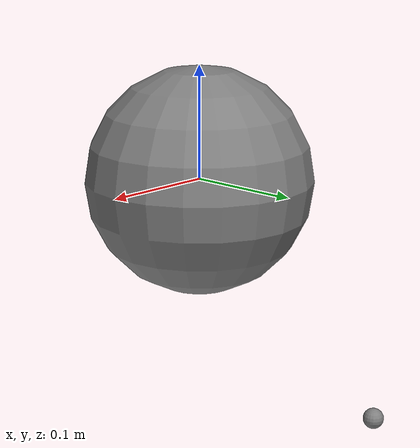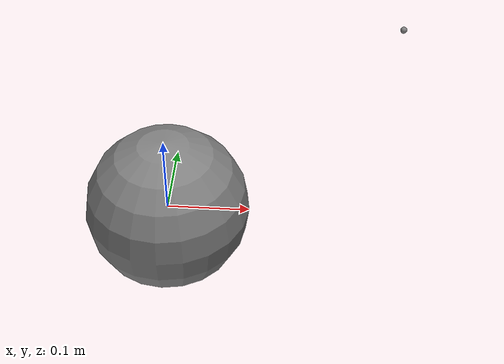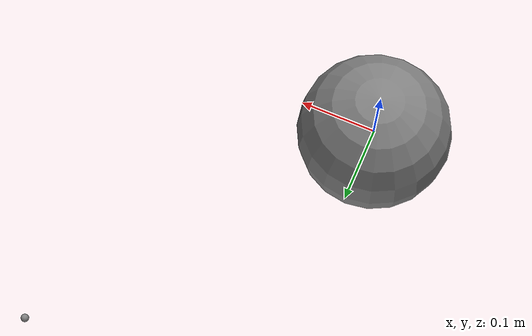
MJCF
<mujoco>
      <option gravity="0 0 0"/>
      <worldbody>
        <body name="b1" pos="0 0 0">
          <joint name="j1" type="hinge" axis="0 0 1"/>
          <geom type="sphere" size="0.1" mass="1.0"/>
          <site name="off_site" pos="0.3 0.4 0"/>
        </body>
      </worldbody>
      <sensor>
        <velocimeter site="off_site"/>
      </sensor>
    </mujoco>
